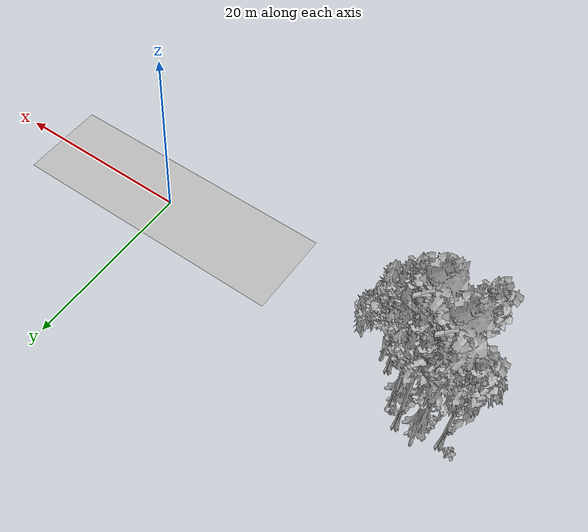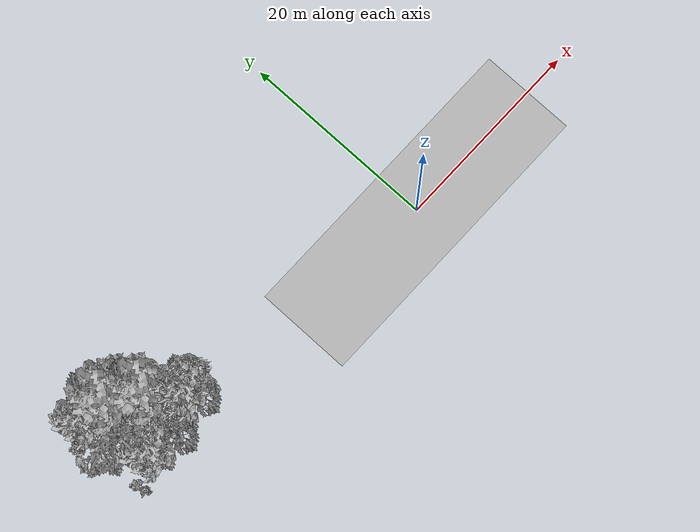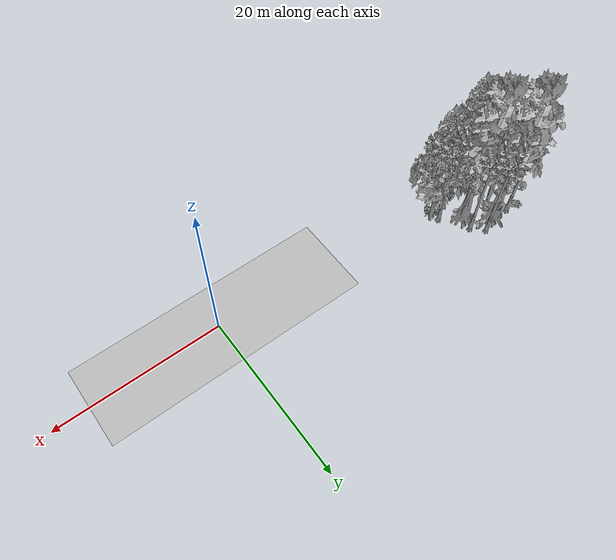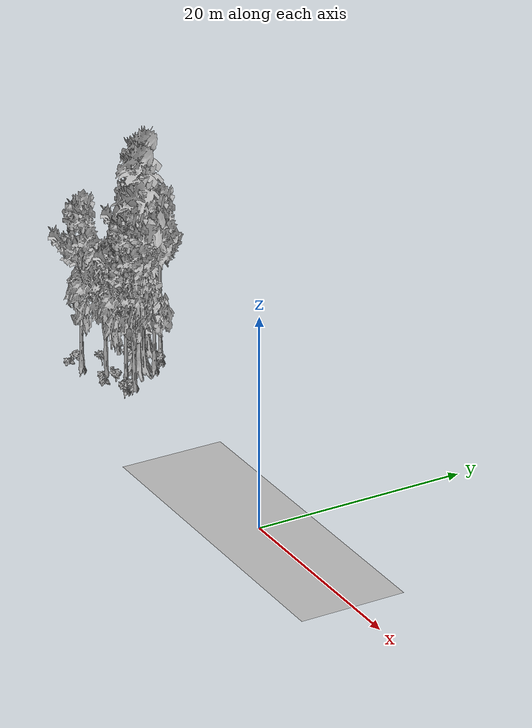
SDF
<sdf version="1.7">
 <world name="default">
  <model name="ground_plane">
   <static>1</static>
   <link name="link">
    <collision name="collision">
     <geometry><plane><normal>0 0 1</normal><size>100 100</size></plane></geometry>
     <surface><contact><ode><min_depth>0.01</min_depth><max_vel>0</max_vel></ode></contact></surface>
    </collision>
    <visual name="grass">
     <cast_shadows>0</cast_shadows>
     <geometry>
      <mesh>
       <scale>0.5814285714285714 0.18142857142857144 0.1</scale>
       <uri>file://grass_plane/meshes/grass_plane.dae</uri>
      </mesh>
     </geometry>
    </visual>
   </link>
  </model>
  <model name="Tree 101">
   <static>1</static>
   <pose>-32.82372026688779 8.109401605198332 0 1.57079 -0 0</pose>
   <link name="link">
    <collision name="collision">
     <geometry><mesh><scale>3.5 5 3.5</scale><uri>model://tree_9/meshes/tree_9.obj</uri></mesh></geometry>
    </collision>
    <visual name="visual">
     <geometry><mesh><scale>3.5 5 3.5</scale><uri>model://tree_9/meshes/tree_9.obj</uri></mesh></geometry>
    </visual>
   </link>
  </model>
  <model name="Tree 135">
   <static>1</static>
   <pose>-32.26675047973352 2.1350864838124686 0 1.57079 -0 0</pose>
   <link name="link">
    <collision name="collision">
     <geometry><mesh><scale>3.5 5 3.5</scale><uri>model://tree_2/meshes/tree_2.obj</uri></mesh></geometry>
    </collision>
    <visual name="visual">
     <geometry><mesh><scale>3.5 5 3.5</scale><uri>model://tree_2/meshes/tree_2.obj</uri></mesh></geometry>
    </visual>
   </link>
  </model>
  <model name="Tree 225">
   <static>1</static>
   <pose>-29.094962873749196 2.5570604096183125 0 1.57079 -0 0</pose>
   <link name="link">
    <collision name="collision">
     <geometry><mesh><scale>3.5 5 3.5</scale><uri>model://tree_9/meshes/tree_9.obj</uri></mesh></geometry>
    </collision>
    <visual name="visual">
     <geometry><mesh><scale>3.5 5 3.5</scale><uri>model://tree_9/meshes/tree_9.obj</uri></mesh></geometry>
    </visual>
   </link>
  </model>
  <model name="Tree 254">
   <static>1</static>
   <pose>-36.95270920861458 7.442875454135898 0 1.57079 -0 0</pose>
   <link name="link">
    <collision name="collision">
     <geometry><mesh><scale>3.5 5 3.5</scale><uri>model://tree_9/meshes/tree_9.obj</uri></mesh></geometry>
    </collision>
    <visual name="visual">
     <geometry><mesh><scale>3.5 5 3.5</scale><uri>model://tree_9/meshes/tree_9.obj</uri></mesh></geometry>
    </visual>
   </link>
  </model>
  <model name="Tree 263">
   <static>1</static>
   <pose>-28.368524922527417 3.022292509177362 0 1.57079 -0 0</pose>
   <link name="link">
    <collision name="collision">
     <geometry><mesh><scale>3.5 5 3.5</scale><uri>model://tree_2/meshes/tree_2.obj</uri></mesh></geometry>
    </collision>
    <visual name="visual">
     <geometry><mesh><scale>3.5 5 3.5</scale><uri>model://tree_2/meshes/tree_2.obj</uri></mesh></geometry>
    </visual>
   </link>
  </model>
  <model name="Tree 283">
   <static>1</static>
   <pose>-31.546336436273528 5.2747141481005855 0 1.57079 -0 0</pose>
   <link name="link">
    <collision name="collision">
     <geometry><mesh><scale>3.5 5 3.5</scale><uri>model://tree_4/meshes/tree_4.obj</uri></mesh></geometry>
    </collision>
    <visual name="visual">
     <geometry><mesh><scale>3.5 5 3.5</scale><uri>model://tree_4/meshes/tree_4.obj</uri></mesh></geometry>
    </visual>
   </link>
  </model>
  <model name="Tree 293">
   <static>1</static>
   <pose>-34.5780422744461 7.300029912086604 0 1.57079 -0 0</pose>
   <link name="link">
    <collision name="collision">
     <geometry><mesh><scale>3.5 5 3.5</scale><uri>model://tree_4/meshes/tree_4.obj</uri></mesh></geometry>
    </collision>
    <visual name="visual">
     <geometry><mesh><scale>3.5 5 3.5</scale><uri>model://tree_4/meshes/tree_4.obj</uri></mesh></geometry>
    </visual>
   </link>
  </model>
  <model name="Tree 315">
   <static>1</static>
   <pose>-31.463359143625937 6.764395060507098 0 1.57079 -0 0</pose>
   <link name="link">
    <collision name="collision">
     <geometry><mesh><scale>3.5 5 3.5</scale><uri>model://tree_9/meshes/tree_9.obj</uri></mesh></geometry>
    </collision>
    <visual name="visual">
     <geometry><mesh><scale>3.5 5 3.5</scale><uri>model://tree_9/meshes/tree_9.obj</uri></mesh></geometry>
    </visual>
   </link>
  </model>
  <model name="Tree 403">
   <static>1</static>
   <pose>-35.061172181429626 1.0957846630673878 0 1.57079 -0 0</pose>
   <link name="link">
    <collision name="collision">
     <geometry><mesh><scale>3.5 5 3.5</scale><uri>model://tree_9/meshes/tree_9.obj</uri></mesh></geometry>
    </collision>
    <visual name="visual">
     <geometry><mesh><scale>3.5 5 3.5</scale><uri>model://tree_9/meshes/tree_9.obj</uri></mesh></geometry>
    </visual>
   </link>
  </model>
  <model name="Tree 438">
   <static>1</static>
   <pose>-29.35161384059912 3.5016122151972446 0 1.57079 -0 0</pose>
   <link name="link">
    <collision name="collision">
     <geometry><mesh><scale>3.5 5 3.5</scale><uri>model://tree_9/meshes/tree_9.obj</uri></mesh></geometry>
    </collision>
    <visual name="visual">
     <geometry><mesh><scale>3.5 5 3.5</scale><uri>model://tree_9/meshes/tree_9.obj</uri></mesh></geometry>
    </visual>
   </link>
  </model>
  <model name="Tree 439">
   <static>1</static>
   <pose>-35.788931268116286 5.252626533793961 0 1.57079 -0 0</pose>
   <link name="link">
    <collision name="collision">
     <geometry><mesh><scale>3.5 5 3.5</scale><uri>model://tree_2/meshes/tree_2.obj</uri></mesh></geometry>
    </collision>
    <visual name="visual">
     <geometry><mesh><scale>3.5 5 3.5</scale><uri>model://tree_2/meshes/tree_2.obj</uri></mesh></geometry>
    </visual>
   </link>
  </model>
  <model name="Bush 1">
   <static>1</static>
   <pose>-34.306278209768564 2.8358806348343215 0 1.57079 -0 0</pose>
   <link name="link">
    <collision name="collision">
     <geometry><mesh><scale>2 2 2</scale><uri>model://bush_5/meshes/bush_5.obj</uri></mesh></geometry>
     <surface><contact><collide_without_contact>false</collide_without_contact></contact></surface>
    </collision>
    <visual name="visual">
     <geometry><mesh><scale>2 2 2</scale><uri>model://bush_5/meshes/bush_5.obj</uri></mesh></geometry>
    </visual>
   </link>
  </model>
  <model name="Bush 75">
   <static>1</static>
   <pose>-30.81178889284942 2.4047826051434633 0 1.57079 -0 0</pose>
   <link name="link">
    <collision name="collision">
     <geometry><mesh><scale>2 2 2</scale><uri>model://bush_0/meshes/bush_0.obj</uri></mesh></geometry>
     <surface><contact><collide_without_contact>false</collide_without_contact></contact></surface>
    </collision>
    <visual name="visual">
     <geometry><mesh><scale>2 2 2</scale><uri>model://bush_0/meshes/bush_0.obj</uri></mesh></geometry>
    </visual>
   </link>
  </model>
  <model name="Bush 90">
   <static>1</static>
   <pose>-37.93605072774508 7.846811108469101 0 1.57079 -0 0</pose>
   <link name="link">
    <collision name="collision">
     <geometry><mesh><scale>2 2 2</scale><uri>model://bush_3/meshes/bush_3.obj</uri></mesh></geometry>
     <surface><contact><collide_without_contact>false</collide_without_contact></contact></surface>
    </collision>
    <visual name="visual">
     <geometry><mesh><scale>2 2 2</scale><uri>model://bush_3/meshes/bush_3.obj</uri></mesh></geometry>
    </visual>
   </link>
  </model>
  <model name="Bush 123">
   <static>1</static>
   <pose>-32.557026703247 1.8785827357102747 0 1.57079 -0 0</pose>
   <link name="link">
    <collision name="collision">
     <geometry><mesh><scale>2 2 2</scale><uri>model://bush_2/meshes/bush_2.obj</uri></mesh></geometry>
     <surface><contact><collide_without_contact>false</collide_without_contact></contact></surface>
    </collision>
    <visual name="visual">
     <geometry><mesh><scale>2 2 2</scale><uri>model://bush_2/meshes/bush_2.obj</uri></mesh></geometry>
    </visual>
   </link>
  </model>
  <model name="Bush 141">
   <static>1</static>
   <pose>-29.732110889637724 2.563254717108716 0 1.57079 -0 0</pose>
   <link name="link">
    <collision name="collision">
     <geometry><mesh><scale>2 2 2</scale><uri>model://bush_2/meshes/bush_2.obj</uri></mesh></geometry>
     <surface><contact><collide_without_contact>false</collide_without_contact></contact></surface>
    </collision>
    <visual name="visual">
     <geometry><mesh><scale>2 2 2</scale><uri>model://bush_2/meshes/bush_2.obj</uri></mesh></geometry>
    </visual>
   </link>
  </model>
  <model name="Bush 166">
   <static>1</static>
   <pose>-31.240178236353884 1.3685462363132501 0 1.57079 -0 0</pose>
   <link name="link">
    <collision name="collision">
     <geometry><mesh><scale>2 2 2</scale><uri>model://bush_2/meshes/bush_2.obj</uri></mesh></geometry>
     <surface><contact><collide_without_contact>false</collide_without_contact></contact></surface>
    </collision>
    <visual name="visual">
     <geometry><mesh><scale>2 2 2</scale><uri>model://bush_2/meshes/bush_2.obj</uri></mesh></geometry>
    </visual>
   </link>
  </model>
  <model name="Bush 174">
   <static>1</static>
   <pose>-28.55138929940508 2.252098715853279 0 1.57079 -0 0</pose>
   <link name="link">
    <collision name="collision">
     <geometry><mesh><scale>2 2 2</scale><uri>model://bush_4/meshes/bush_4.obj</uri></mesh></geometry>
     <surface><contact><collide_without_contact>false</collide_without_contact></contact></surface>
    </collision>
    <visual name="visual">
     <geometry><mesh><scale>2 2 2</scale><uri>model://bush_4/meshes/bush_4.obj</uri></mesh></geometry>
    </visual>
   </link>
  </model>
  <model name="Bush 184">
   <static>1</static>
   <pose>-36.54664996989235 0.44761911497036166 0 1.57079 -0 0</pose>
   <link name="link">
    <collision name="collision">
     <geometry><mesh><scale>2 2 2</scale><uri>model://bush_2/meshes/bush_2.obj</uri></mesh></geometry>
     <surface><contact><collide_without_contact>false</collide_without_contact></contact></surface>
    </collision>
    <visual name="visual">
     <geometry><mesh><scale>2 2 2</scale><uri>model://bush_2/meshes/bush_2.obj</uri></mesh></geometry>
    </visual>
   </link>
  </model>
  <model name="Bush 243">
   <static>1</static>
   <pose>-36.624765452176554 1.4506479285630007 0 1.57079 -0 0</pose>
   <link name="link">
    <collision name="collision">
     <geometry><mesh><scale>2 2 2</scale><uri>model://bush_3/meshes/bush_3.obj</uri></mesh></geometry>
     <surface><contact><collide_without_contact>false</collide_without_contact></contact></surface>
    </collision>
    <visual name="visual">
     <geometry><mesh><scale>2 2 2</scale><uri>model://bush_3/meshes/bush_3.obj</uri></mesh></geometry>
    </visual>
   </link>
  </model>
  <model name="Bush 255">
   <static>1</static>
   <pose>-35.141440397787335 6.081018325091748 0 1.57079 -0 0</pose>
   <link name="link">
    <collision name="collision">
     <geometry><mesh><scale>2 2 2</scale><uri>model://bush_3/meshes/bush_3.obj</uri></mesh></geometry>
     <surface><contact><collide_without_contact>false</collide_without_contact></contact></surface>
    </collision>
    <visual name="visual">
     <geometry><mesh><scale>2 2 2</scale><uri>model://bush_3/meshes/bush_3.obj</uri></mesh></geometry>
    </visual>
   </link>
  </model>
  <model name="Bush 330">
   <static>1</static>
   <pose>-31.806220089339195 7.445726832114158 0 1.57079 -0 0</pose>
   <link name="link">
    <collision name="collision">
     <geometry><mesh><scale>2 2 2</scale><uri>model://bush_0/meshes/bush_0.obj</uri></mesh></geometry>
     <surface><contact><collide_without_contact>false</collide_without_contact></contact></surface>
    </collision>
    <visual name="visual">
     <geometry><mesh><scale>2 2 2</scale><uri>model://bush_0/meshes/bush_0.obj</uri></mesh></geometry>
    </visual>
   </link>
  </model>
 </world>
</sdf>
